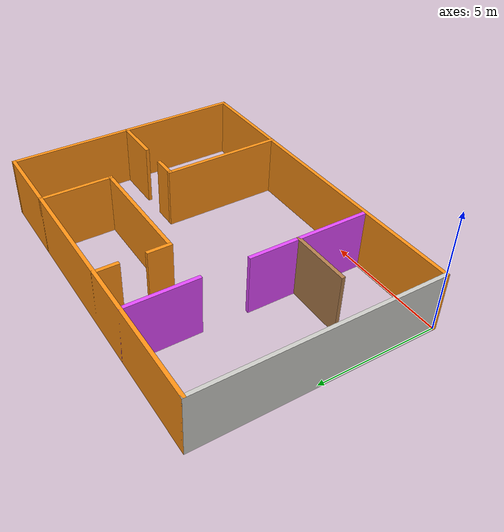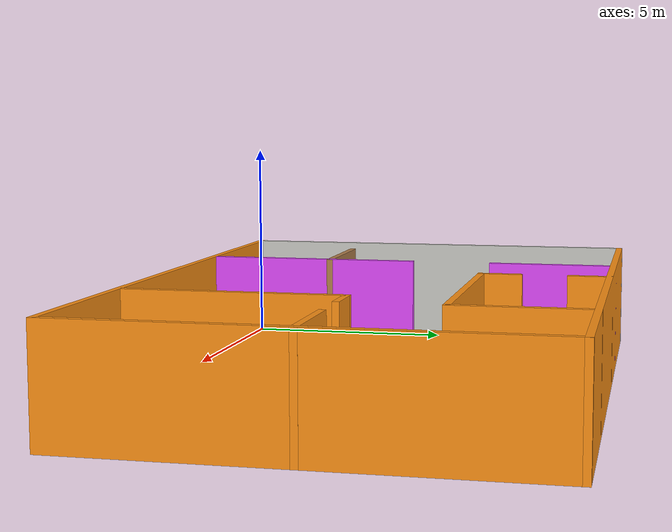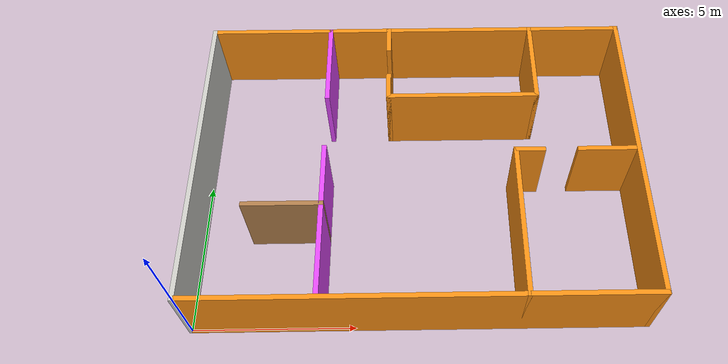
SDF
<?xml version='1.0'?>
<sdf version='1.6'>
  <model name='Building'>
    <pose frame=''>6.92525 4.925 0 0 -0 0</pose>
    <link name='Wall_17'>
      <collision name='Wall_17_Collision'>
        <geometry>
          <box>
            <size>14 0.15 2.5</size>
          </box>
        </geometry>
        <pose frame=''>0 0 1.25 0 -0 0</pose>
      </collision>
      <visual name='Wall_17_Visual'>
        <pose frame=''>0 0 1.25 0 -0 0</pose>
        <geometry>
          <box>
            <size>14 0.15 2.5</size>
          </box>
        </geometry>
        <material>
          <script>
            <uri>file://media/materials/scripts/gazebo.material</uri>
            <name>Gazebo/Grey</name>
          </script>
          <ambient>1 0.572549 0.0823529 1</ambient>
        </material>
        <meta>
          <layer>0</layer>
        </meta>
      </visual>
      <pose frame=''>-0.000249 -4.925 0 0 -0 0</pose>
    </link>
    <link name='Wall_20'>
      <collision name='Wall_20_Collision'>
        <geometry>
          <box>
            <size>10 0.15 2.5</size>
          </box>
        </geometry>
        <pose frame=''>0 0 1.25 0 -0 0</pose>
      </collision>
      <visual name='Wall_20_Visual'>
        <pose frame=''>0 0 1.25 0 -0 0</pose>
        <geometry>
          <box>
            <size>10 0.15 2.5</size>
          </box>
        </geometry>
        <material>
          <script>
            <uri>file://media/materials/scripts/gazebo.material</uri>
            <name>Gazebo/CeilingTiled</name>
          </script>
          <ambient>1 1 1 1</ambient>
        </material>
        <meta>
          <layer>0</layer>
        </meta>
      </visual>
      <pose frame=''>-6.92525 0 0 0 -0 1.5708</pose>
    </link>
    <link name='Wall_22'>
      <collision name='Wall_22_Collision'>
        <geometry>
          <box>
            <size>10 0.15 2.5</size>
          </box>
        </geometry>
        <pose frame=''>0 0 1.25 0 -0 0</pose>
      </collision>
      <visual name='Wall_22_Visual'>
        <pose frame=''>0 0 1.25 0 -0 0</pose>
        <geometry>
          <box>
            <size>10 0.15 2.5</size>
          </box>
        </geometry>
        <material>
          <script>
            <uri>file://media/materials/scripts/gazebo.material</uri>
            <name>Gazebo/Grey</name>
          </script>
          <ambient>1 0.572549 0.0823529 1</ambient>
        </material>
        <meta>
          <layer>0</layer>
        </meta>
      </visual>
      <pose frame=''>6.92475 0 0 0 -0 1.5708</pose>
    </link>
    <link name='Wall_24'>
      <collision name='Wall_24_Collision'>
        <geometry>
          <box>
            <size>14 0.15 2.5</size>
          </box>
        </geometry>
        <pose frame=''>0 0 1.25 0 -0 0</pose>
      </collision>
      <visual name='Wall_24_Visual'>
        <pose frame=''>0 0 1.25 0 -0 0</pose>
        <geometry>
          <box>
            <size>14 0.15 2.5</size>
          </box>
        </geometry>
        <material>
          <script>
            <uri>file://media/materials/scripts/gazebo.material</uri>
            <name>Gazebo/Grey</name>
          </script>
          <ambient>1 0.572549 0.0823529 1</ambient>
        </material>
        <meta>
          <layer>0</layer>
        </meta>
      </visual>
      <pose frame=''>-0.000249 4.925 0 0 -0 0</pose>
    </link>
    <link name='Wall_26'>
      <collision name='Wall_26_Collision'>
        <geometry>
          <box>
            <size>3 0.15 2.5</size>
          </box>
        </geometry>
        <pose frame=''>0 0 1.25 0 -0 0</pose>
      </collision>
      <visual name='Wall_26_Visual'>
        <pose frame=''>0 0 1.25 0 -0 0</pose>
        <geometry>
          <box>
            <size>3 0.15 2.5</size>
          </box>
        </geometry>
        <material>
          <script>
            <uri>file://media/materials/scripts/gazebo.material</uri>
            <name>Gazebo/Grey</name>
          </script>
          <ambient>0.894118 0.290196 1 1</ambient>
        </material>
        <meta>
          <layer>0</layer>
        </meta>
      </visual>
      <pose frame=''>-2.92525 3.5 0 0 0 -1.5708</pose>
    </link>
    <link name='Wall_28'>
      <collision name='Wall_28_Collision'>
        <geometry>
          <box>
            <size>5 0.15 2.5</size>
          </box>
        </geometry>
        <pose frame=''>0 0 1.25 0 -0 0</pose>
      </collision>
      <visual name='Wall_28_Visual'>
        <pose frame=''>0 0 1.25 0 -0 0</pose>
        <geometry>
          <box>
            <size>5 0.15 2.5</size>
          </box>
        </geometry>
        <material>
          <script>
            <uri>file://media/materials/scripts/gazebo.material</uri>
            <name>Gazebo/Grey</name>
          </script>
          <ambient>0.894118 0.290196 1 1</ambient>
        </material>
        <meta>
          <layer>0</layer>
        </meta>
      </visual>
      <pose frame=''>-2.92525 -2.35 0 0 -0 1.5708</pose>
    </link>
    <link name='Wall_30'>
      <collision name='Wall_30_Collision'>
        <geometry>
          <box>
            <size>1 0.15 2.5</size>
          </box>
        </geometry>
        <pose frame=''>0 0 1.25 0 -0 0</pose>
      </collision>
      <visual name='Wall_30_Visual'>
        <pose frame=''>0 0 1.25 0 -0 0</pose>
        <geometry>
          <box>
            <size>1 0.15 2.5</size>
          </box>
        </geometry>
        <material>
          <script>
            <uri>file://media/materials/scripts/gazebo.material</uri>
            <name>Gazebo/Grey</name>
          </script>
          <ambient>1 0.572549 0.0823529 1</ambient>
        </material>
        <meta>
          <layer>0</layer>
        </meta>
      </visual>
      <pose frame=''>-0.92525 4.5 0 0 0 -1.5708</pose>
    </link>
    <link name='Wall_34'>
      <collision name='Wall_34_Collision'>
        <geometry>
          <box>
            <size>1 0.15 2.5</size>
          </box>
        </geometry>
        <pose frame=''>0 0 1.25 0 -0 0</pose>
      </collision>
      <visual name='Wall_34_Visual'>
        <pose frame=''>0 0 1.25 0 -0 0</pose>
        <geometry>
          <box>
            <size>1 0.15 2.5</size>
          </box>
        </geometry>
        <material>
          <script>
            <uri>file://media/materials/scripts/gazebo.material</uri>
            <name>Gazebo/Grey</name>
          </script>
          <ambient>1 0.572549 0.0823529 1</ambient>
        </material>
        <meta>
          <layer>0</layer>
        </meta>
      </visual>
      <pose frame=''>-0.92525 2.5 0 0 0 -1.5708</pose>
    </link>
    <link name='Wall_36'>
      <collision name='Wall_36_Collision'>
        <geometry>
          <box>
            <size>5 0.15 2.5</size>
          </box>
        </geometry>
        <pose frame=''>0 0 1.25 0 -0 0</pose>
      </collision>
      <visual name='Wall_36_Visual'>
        <pose frame=''>0 0 1.25 0 -0 0</pose>
        <geometry>
          <box>
            <size>5 0.15 2.5</size>
          </box>
        </geometry>
        <material>
          <script>
            <uri>file://media/materials/scripts/gazebo.material</uri>
            <name>Gazebo/Grey</name>
          </script>
          <ambient>1 0.572549 0.0823529 1</ambient>
        </material>
        <meta>
          <layer>0</layer>
        </meta>
      </visual>
      <pose frame=''>1.49975 2.075 0 0 -0 0</pose>
    </link>
    <link name='Wall_37'>
      <collision name='Wall_37_Collision'>
        <geometry>
          <box>
            <size>3 0.15 2.5</size>
          </box>
        </geometry>
        <pose frame=''>0 0 1.25 0 -0 0</pose>
      </collision>
      <visual name='Wall_37_Visual'>
        <pose frame=''>0 0 1.25 0 -0 0</pose>
        <geometry>
          <box>
            <size>3 0.15 2.5</size>
          </box>
        </geometry>
        <material>
          <script>
            <uri>file://media/materials/scripts/gazebo.material</uri>
            <name>Gazebo/Grey</name>
          </script>
          <ambient>1 0.572549 0.0823529 1</ambient>
        </material>
        <meta>
          <layer>0</layer>
        </meta>
      </visual>
      <pose frame=''>3.92475 3.5 0 0 -0 1.5708</pose>
    </link>
    <link name='Wall_45'>
      <collision name='Wall_45_Collision'>
        <geometry>
          <box>
            <size>5 0.15 2.5</size>
          </box>
        </geometry>
        <pose frame=''>0 0 1.25 0 -0 0</pose>
      </collision>
      <visual name='Wall_45_Visual'>
        <pose frame=''>0 0 1.25 0 -0 0</pose>
        <geometry>
          <box>
            <size>5 0.15 2.5</size>
          </box>
        </geometry>
        <material>
          <script>
            <uri>file://media/materials/scripts/gazebo.material</uri>
            <name>Gazebo/Grey</name>
          </script>
          <ambient>1 0.572549 0.0823529 1</ambient>
        </material>
        <meta>
          <layer>0</layer>
        </meta>
      </visual>
      <pose frame=''>3.07475 -2.5 0 0 -0 1.5708</pose>
    </link>
    <link name='Wall_47'>
      <collision name='Wall_47_Collision'>
        <geometry>
          <box>
            <size>1 0.15 2.5</size>
          </box>
        </geometry>
        <pose frame=''>0 0 1.25 0 -0 0</pose>
      </collision>
      <visual name='Wall_47_Visual'>
        <pose frame=''>0 0 1.25 0 -0 0</pose>
        <geometry>
          <box>
            <size>1 0.15 2.5</size>
          </box>
        </geometry>
        <material>
          <script>
            <uri>file://media/materials/scripts/gazebo.material</uri>
            <name>Gazebo/Grey</name>
          </script>
          <ambient>1 0.572549 0.0823529 1</ambient>
        </material>
        <meta>
          <layer>0</layer>
        </meta>
      </visual>
      <pose frame=''>3.49975 -0.075001 0 0 -0 0</pose>
    </link>
    <link name='Wall_49'>
      <collision name='Wall_49_Collision'>
        <geometry>
          <box>
            <size>2 0.15 2.5</size>
          </box>
        </geometry>
        <pose frame=''>0 0 1.25 0 -0 0</pose>
      </collision>
      <visual name='Wall_49_Visual'>
        <pose frame=''>0 0 1.25 0 -0 0</pose>
        <geometry>
          <box>
            <size>2 0.15 2.5</size>
          </box>
        </geometry>
        <material>
          <script>
            <uri>file://media/materials/scripts/gazebo.material</uri>
            <name>Gazebo/Grey</name>
          </script>
          <ambient>1 0.572549 0.0823529 1</ambient>
        </material>
        <meta>
          <layer>0</layer>
        </meta>
      </visual>
      <pose frame=''>6.00025 -0.075001 0 0 -0 3.14159</pose>
    </link>
    <link name='Wall_51'>
      <collision name='Wall_51_Collision'>
        <geometry>
          <box>
            <size>2.5 0.15 2.5</size>
          </box>
        </geometry>
        <pose frame=''>0 0 1.25 0 -0 0</pose>
      </collision>
      <visual name='Wall_51_Visual'>
        <pose frame=''>0 0 1.25 0 -0 0</pose>
        <geometry>
          <box>
            <size>2.5 0.15 2.5</size>
          </box>
        </geometry>
        <material>
          <script>
            <uri>file://media/materials/scripts/gazebo.material</uri>
            <name>Gazebo/Wood</name>
          </script>
          <ambient>1 1 1 1</ambient>
        </material>
        <meta>
          <layer>0</layer>
        </meta>
      </visual>
      <pose frame=''>-4.10025 -1.925 0 0 -0 3.14159</pose>
    </link>
    <static>1</static>
  </model>
</sdf>
